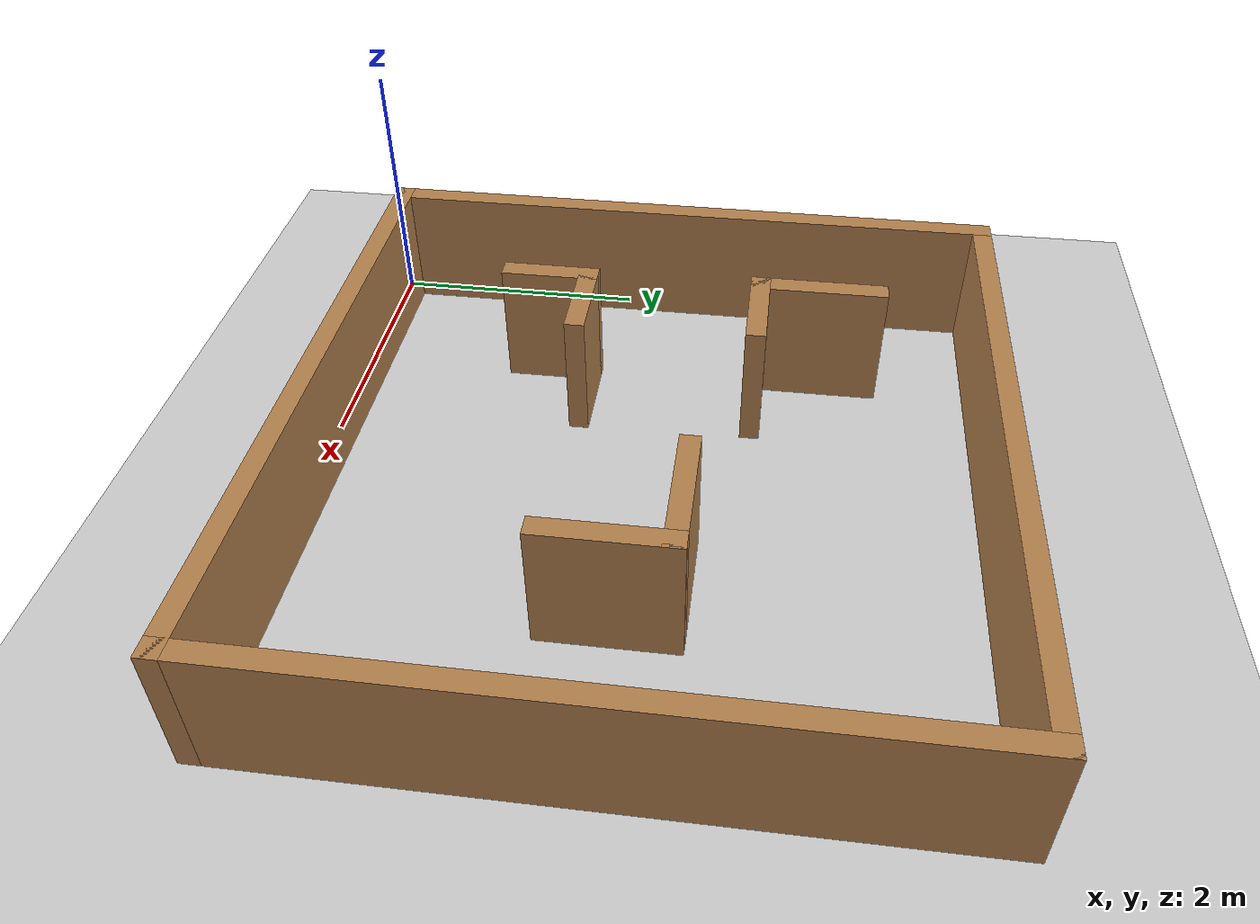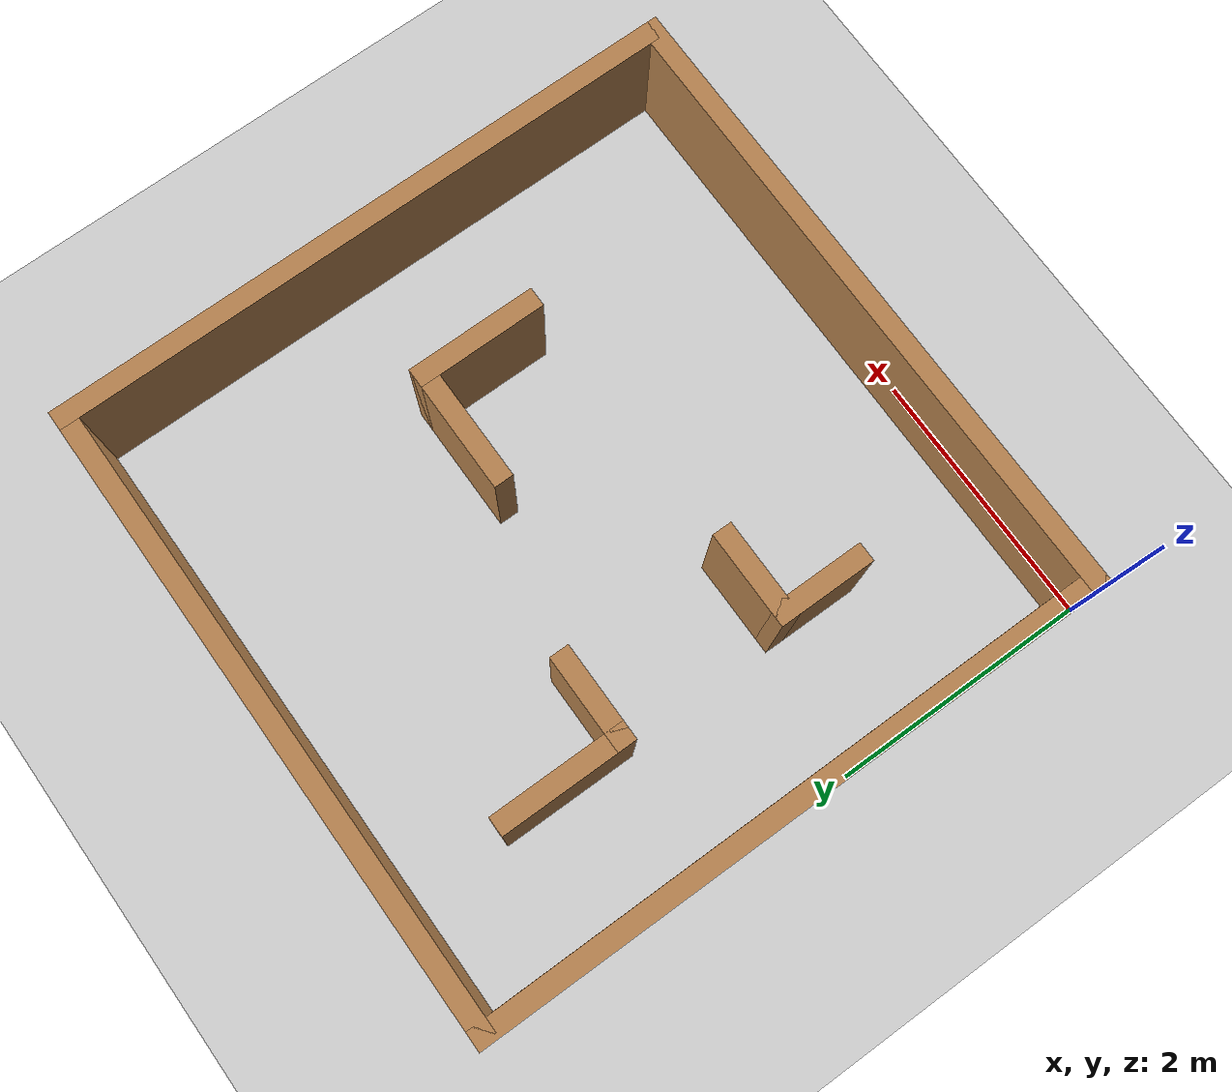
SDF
<sdf version="1.6">
 <world name="default">
  <light name="sun" type="directional">
   <pose>0 0 10 0 -0 0</pose>
   <diffuse>0.8 0.8 0.8 1</diffuse>
   <specular>0.2 0.2 0.2 1</specular>
   <attenuation>
    <range>1000</range>
    <constant>0.9</constant>
    <linear>0.01</linear>
    <quadratic>0.001</quadratic>
   </attenuation>
   <direction>-0.5 0.1 -0.9</direction>
  </light>
  <model name="ground_plane">
   <static>1</static>
   <link name="link">
    <collision name="collision">
     <geometry><plane><normal>0 0 1</normal><size>100 100</size></plane></geometry>
     <surface>
      <contact><collide_bitmask>65535</collide_bitmask></contact>
      <friction><ode><mu>100</mu><mu2>50</mu2></ode></friction>
     </surface>
    </collision>
    <visual name="visual">
     <cast_shadows>0</cast_shadows>
     <geometry><plane><normal>0 0 1</normal><size>100 100</size></plane></geometry>
     <material>
      <script><uri>file://media/materials/scripts/gazebo.material</uri><name>Gazebo/Grey</name></script>
     </material>
    </visual>
   </link>
  </model>
  <gravity>0 0 -9.8</gravity>
  <magnetic_field>6e-06 2.3e-05 -4.2e-05</magnetic_field>
  <atmosphere type="adiabatic"/>
  <physics name="default_physics" default="0" type="ode">
   <max_step_size>0.002</max_step_size>
   <real_time_factor>1</real_time_factor>
   <real_time_update_rate>2500</real_time_update_rate>
  </physics>
  <scene><ambient>0.4 0.4 0.4 1</ambient><background>0.7 0.7 0.7 1</background><shadows>1</shadows></scene>
  <audio><device>default</device></audio>
  <spherical_coordinates>
   <surface_model>EARTH_WGS84</surface_model>
   <latitude_deg>0</latitude_deg>
   <longitude_deg>0</longitude_deg>
   <elevation>0</elevation>
   <heading_deg>0</heading_deg>
  </spherical_coordinates>
  <model name="CZC">
   <pose>2.496 2.503 0 0 -0 0</pose>
   <link name="Wall_10">
    <collision name="Wall_10_Collision">
     <geometry><box><size>1.046 0.15 1</size></box></geometry>
     <pose>0 0 0.5 0 -0 0</pose>
    </collision>
    <visual name="Wall_10_Visual">
     <pose>0 0 0.5 0 -0 0</pose>
     <geometry><box><size>1.046 0.15 1</size></box></geometry>
     <material>
      <script><uri>file://media/materials/scripts/gazebo.material</uri><name>Gazebo/Wood</name></script>
      <ambient>1 1 1 1</ambient>
     </material>
     <meta><layer>0</layer></meta>
    </visual>
    <pose>-1.449 1.124 0 0 -0 -1.5708</pose>
   </link>
   <link name="Wall_22">
    <collision name="Wall_22_Collision">
     <geometry><box><size>1 0.15 1</size></box></geometry>
     <pose>0 0 0.5 0 -0 0</pose>
    </collision>
    <visual name="Wall_22_Visual">
     <pose>0 0 0.5 0 -0 0</pose>
     <geometry><box><size>1 0.15 1</size></box></geometry>
     <material>
      <script><uri>file://media/materials/scripts/gazebo.material</uri><name>Gazebo/Wood</name></script>
      <ambient>1 1 1 1</ambient>
     </material>
     <meta><layer>0</layer></meta>
    </visual>
    <pose>0.852 0.313 0 0 -0 0</pose>
   </link>
   <link name="Wall_27">
    <collision name="Wall_27_Collision">
     <geometry><box><size>1 0.15 1</size></box></geometry>
     <pose>0 0 0.5 0 -0 0</pose>
    </collision>
    <visual name="Wall_27_Visual">
     <pose>0 0 0.5 0 -0 0</pose>
     <geometry><box><size>1 0.15 1</size></box></geometry>
     <material>
      <script><uri>file://media/materials/scripts/gazebo.material</uri><name>Gazebo/Wood</name></script>
      <ambient>1 1 1 1</ambient>
     </material>
     <meta><layer>0</layer></meta>
    </visual>
    <pose>1.277 -0.112 0 0 -0 -1.5708</pose>
   </link>
   <link name="Wall_3">
    <collision name="Wall_3_Collision">
     <geometry><box><size>5 0.15 1</size></box></geometry>
     <pose>0 0 0.5 0 -0 0</pose>
    </collision>
    <visual name="Wall_3_Visual">
     <pose>0 0 0.5 0 -0 0</pose>
     <geometry><box><size>5 0.15 1</size></box></geometry>
     <material>
      <script><uri>file://media/materials/scripts/gazebo.material</uri><name>Gazebo/Wood</name></script>
      <ambient>1 1 1 1</ambient>
     </material>
     <meta><layer>0</layer></meta>
    </visual>
    <pose>-2.425 0 0 0 -0 -1.5708</pose>
   </link>
   <link name="Wall_37">
    <collision name="Wall_37_Collision">
     <geometry><box><size>0.75 0.15 1</size></box></geometry>
     <pose>0 0 0.5 0 -0 0</pose>
    </collision>
    <visual name="Wall_37_Visual">
     <pose>0 0 0.5 0 -0 0</pose>
     <geometry><box><size>0.75 0.15 1</size></box></geometry>
     <material>
      <script><uri>file://media/materials/scripts/gazebo.material</uri><name>Gazebo/Wood</name></script>
      <ambient>1 1 1 1</ambient>
     </material>
     <meta><layer>0</layer></meta>
    </visual>
    <pose>-1.149 0.676 0 0 -0 0</pose>
   </link>
   <link name="Wall_39">
    <collision name="Wall_39_Collision">
     <geometry><box><size>0.749 0.15 1</size></box></geometry>
     <pose>0 0 0.5 0 -0 0</pose>
    </collision>
    <visual name="Wall_39_Visual">
     <pose>0 0 0.5 0 -0 0</pose>
     <geometry><box><size>0.749 0.15 1</size></box></geometry>
     <material>
      <script><uri>file://media/materials/scripts/gazebo.material</uri><name>Gazebo/Wood</name></script>
      <ambient>1 1 1 1</ambient>
     </material>
     <meta><layer>0</layer></meta>
    </visual>
    <pose>-1.1115 -0.657 0 0 -0 0</pose>
   </link>
   <link name="Wall_41">
    <collision name="Wall_41_Collision">
     <geometry><box><size>0.75 0.15 1</size></box></geometry>
     <pose>0 0 0.5 0 -0 0</pose>
    </collision>
    <visual name="Wall_41_Visual">
     <pose>0 0 0.5 0 -0 0</pose>
     <geometry><box><size>0.75 0.15 1</size></box></geometry>
     <material>
      <script><uri>file://media/materials/scripts/gazebo.material</uri><name>Gazebo/Wood</name></script>
      <ambient>1 1 1 1</ambient>
     </material>
     <meta><layer>0</layer></meta>
    </visual>
    <pose>-1.411 -0.957 0 0 -0 -1.5708</pose>
   </link>
   <link name="Wall_5">
    <collision name="Wall_5_Collision">
     <geometry><box><size>5 0.15 1</size></box></geometry>
     <pose>0 0 0.5 0 -0 0</pose>
    </collision>
    <visual name="Wall_5_Visual">
     <pose>0 0 0.5 0 -0 0</pose>
     <geometry><box><size>5 0.15 1</size></box></geometry>
     <material>
      <script><uri>file://media/materials/scripts/gazebo.material</uri><name>Gazebo/Wood</name></script>
      <ambient>1 1 1 1</ambient>
     </material>
     <meta><layer>0</layer></meta>
    </visual>
    <pose>0 2.425 0 0 -0 0</pose>
   </link>
   <link name="Wall_6">
    <collision name="Wall_6_Collision">
     <geometry><box><size>5 0.15 1</size></box></geometry>
     <pose>0 0 0.5 0 -0 0</pose>
    </collision>
    <visual name="Wall_6_Visual">
     <pose>0 0 0.5 0 -0 0</pose>
     <geometry><box><size>5 0.15 1</size></box></geometry>
     <material>
      <script><uri>file://media/materials/scripts/gazebo.material</uri><name>Gazebo/Wood</name></script>
      <ambient>1 1 1 1</ambient>
     </material>
     <meta><layer>0</layer></meta>
    </visual>
    <pose>2.425 0 0 0 -0 -1.5708</pose>
   </link>
   <link name="Wall_7">
    <collision name="Wall_7_Collision">
     <geometry><box><size>5 0.15 1</size></box></geometry>
     <pose>0 0 0.5 0 -0 0</pose>
    </collision>
    <visual name="Wall_7_Visual">
     <pose>0 0 0.5 0 -0 0</pose>
     <geometry><box><size>5 0.15 1</size></box></geometry>
     <material>
      <script><uri>file://media/materials/scripts/gazebo.material</uri><name>Gazebo/Wood</name></script>
      <ambient>1 1 1 1</ambient>
     </material>
     <meta><layer>0</layer></meta>
    </visual>
    <pose>0 -2.425 0 0 -0 3.14159</pose>
   </link>
   <static>1</static>
  </model>
 </world>
</sdf>
